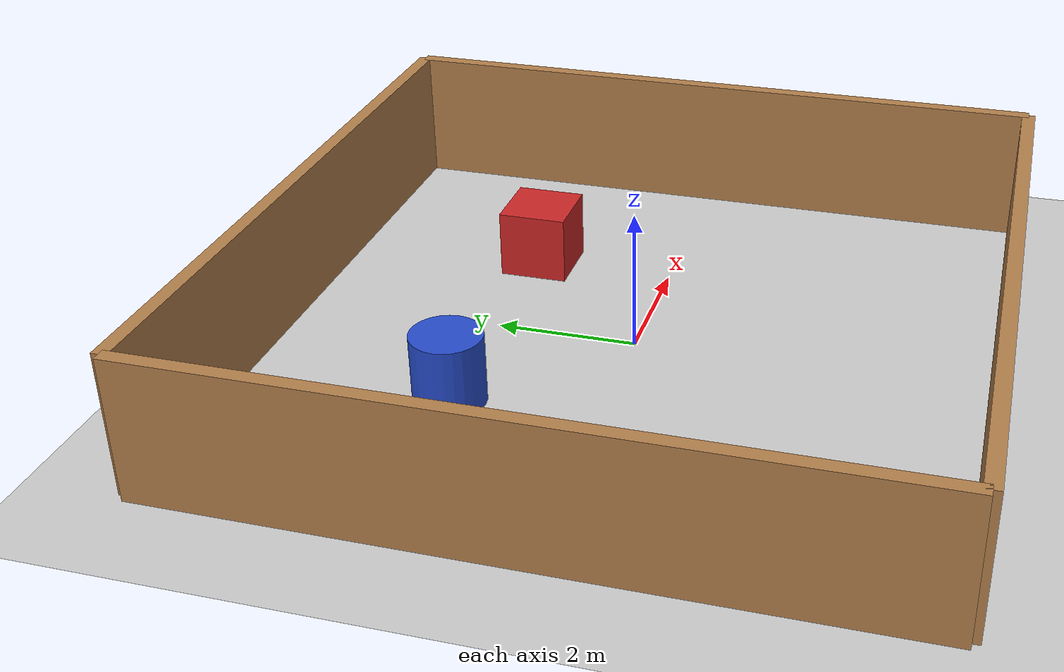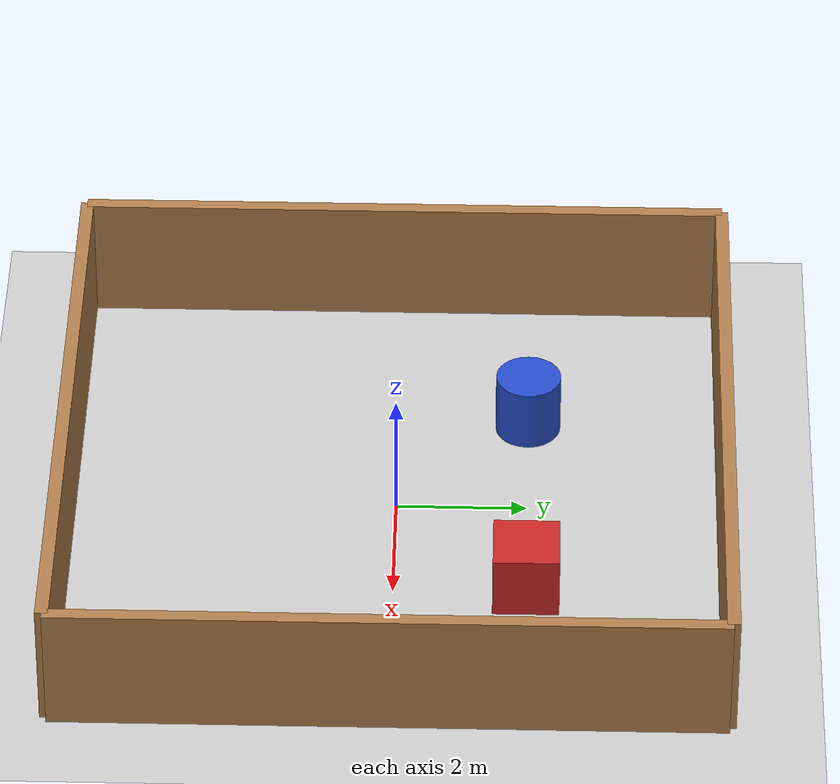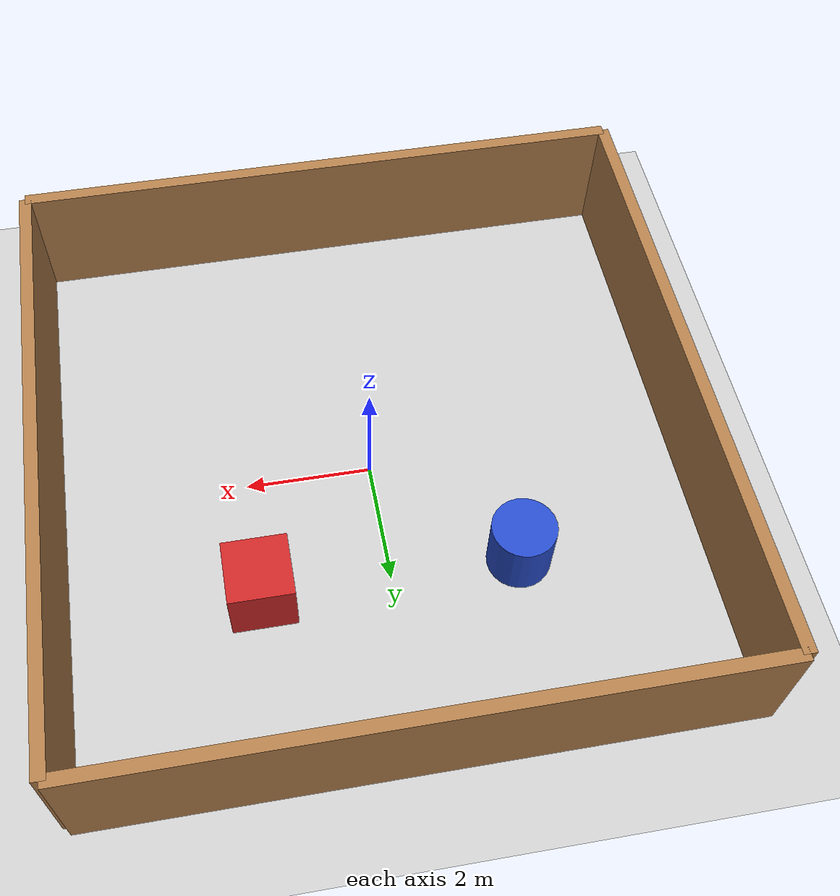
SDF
<?xml version="1.0" ?>
<sdf version="1.6">
  <world name="test_world">

    <gravity>0 0 -9.8066</gravity>

    <!-- Physics -->
    <physics name="default_physics" default="0" type="ode">
      <ode>
        <solver>
          <type>world</type>
          <iters>100</iters>
          <sor>1.4</sor>
          <use_dynamic_moi_rescaling>1</use_dynamic_moi_rescaling>
        </solver>
        <constraints>
          <cfm>0.0</cfm>
          <erp>0.2</erp>
          <contact_max_correcting_vel>100</contact_max_correcting_vel>
        </constraints>
      </ode>
      <max_step_size>0.004</max_step_size>
      <real_time_factor>1</real_time_factor>
      <real_time_update_rate>250</real_time_update_rate>
    </physics>

    <!-- Lighting -->
    <light name="sun" type="directional">
      <cast_shadows>1</cast_shadows>
      <pose>0 0 10 0 0 0</pose>
      <diffuse>0.8 0.8 0.8 1</diffuse>
      <specular>0.2 0.2 0.2 1</specular>
      <attenuation>
        <range>1000</range>
        <constant>0.9</constant>
        <linear>0.01</linear>
        <quadratic>0.001</quadratic>
      </attenuation>
      <direction>-0.5 0.1 -0.9</direction>
    </light>

    <!-- Ground Plane -->
    <model name="ground_plane">
      <static>true</static>
      <link name="link">
        <collision name="collision">
          <geometry>
            <plane>
              <normal>0 0 1</normal>
              <size>100 100</size>
            </plane>
          </geometry>
          <surface>
            <friction>
              <ode>
                <mu>1.0</mu>
                <mu2>1.0</mu2>
              </ode>
            </friction>
          </surface>
        </collision>
        <visual name="visual">
          <geometry>
            <plane>
              <normal>0 0 1</normal>
              <size>100 100</size>
            </plane>
          </geometry>
          <material>
            <script>
              <uri>file://media/materials/scripts/gazebo.material</uri>
              <name>Gazebo/Grey</name>
            </script>
          </material>
        </visual>
      </link>
    </model>

    <!-- Walls to create a room -->
    <model name="wall_1">
      <static>true</static>
      <pose>5 0 1 0 0 0</pose>
      <link name="link">
        <collision name="collision">
          <geometry>
            <box>
              <size>0.2 10 2</size>
            </box>
          </geometry>
        </collision>
        <visual name="visual">
          <geometry>
            <box>
              <size>0.2 10 2</size>
            </box>
          </geometry>
          <material>
            <script>
              <uri>file://media/materials/scripts/gazebo.material</uri>
              <name>Gazebo/Wood</name>
            </script>
          </material>
        </visual>
      </link>
    </model>

    <model name="wall_2">
      <static>true</static>
      <pose>-5 0 1 0 0 0</pose>
      <link name="link">
        <collision name="collision">
          <geometry>
            <box>
              <size>0.2 10 2</size>
            </box>
          </geometry>
        </collision>
        <visual name="visual">
          <geometry>
            <box>
              <size>0.2 10 2</size>
            </box>
          </geometry>
          <material>
            <script>
              <uri>file://media/materials/scripts/gazebo.material</uri>
              <name>Gazebo/Wood</name>
            </script>
          </material>
        </visual>
      </link>
    </model>

    <model name="wall_3">
      <static>true</static>
      <pose>0 5 1 0 0 0</pose>
      <link name="link">
        <collision name="collision">
          <geometry>
            <box>
              <size>10 0.2 2</size>
            </box>
          </geometry>
        </collision>
        <visual name="visual">
          <geometry>
            <box>
              <size>10 0.2 2</size>
            </box>
          </geometry>
          <material>
            <script>
              <uri>file://media/materials/scripts/gazebo.material</uri>
              <name>Gazebo/Wood</name>
            </script>
          </material>
        </visual>
      </link>
    </model>

    <model name="wall_4">
      <static>true</static>
      <pose>0 -5 1 0 0 0</pose>
      <link name="link">
        <collision name="collision">
          <geometry>
            <box>
              <size>10 0.2 2</size>
            </box>
          </geometry>
        </collision>
        <visual name="visual">
          <geometry>
            <box>
              <size>10 0.2 2</size>
            </box>
          </geometry>
          <material>
            <script>
              <uri>file://media/materials/scripts/gazebo.material</uri>
              <name>Gazebo/Wood</name>
            </script>
          </material>
        </visual>
      </link>
    </model>

    <!-- Some objects for detection -->
    <model name="box_1">
      <static>true</static>
      <pose>2 2 0.5 0 0 0</pose>
      <link name="link">
        <collision name="collision">
          <geometry>
            <box>
              <size>1 1 1</size>
            </box>
          </geometry>
        </collision>
        <visual name="visual">
          <geometry>
            <box>
              <size>1 1 1</size>
            </box>
          </geometry>
          <material>
            <script>
              <uri>file://media/materials/scripts/gazebo.material</uri>
              <name>Gazebo/Red</name>
            </script>
          </material>
        </visual>
      </link>
    </model>

    <model name="cylinder_1">
      <static>true</static>
      <pose>-2 2 0.5 0 0 0</pose>
      <link name="link">
        <collision name="collision">
          <geometry>
            <cylinder>
              <radius>0.5</radius>
              <length>1</length>
            </cylinder>
          </geometry>
        </collision>
        <visual name="visual">
          <geometry>
            <cylinder>
              <radius>0.5</radius>
              <length>1</length>
            </cylinder>
          </geometry>
          <material>
            <script>
              <uri>file://media/materials/scripts/gazebo.material</uri>
              <name>Gazebo/Blue</name>
            </script>
          </material>
        </visual>
      </link>
    </model>

  </world>
</sdf>
